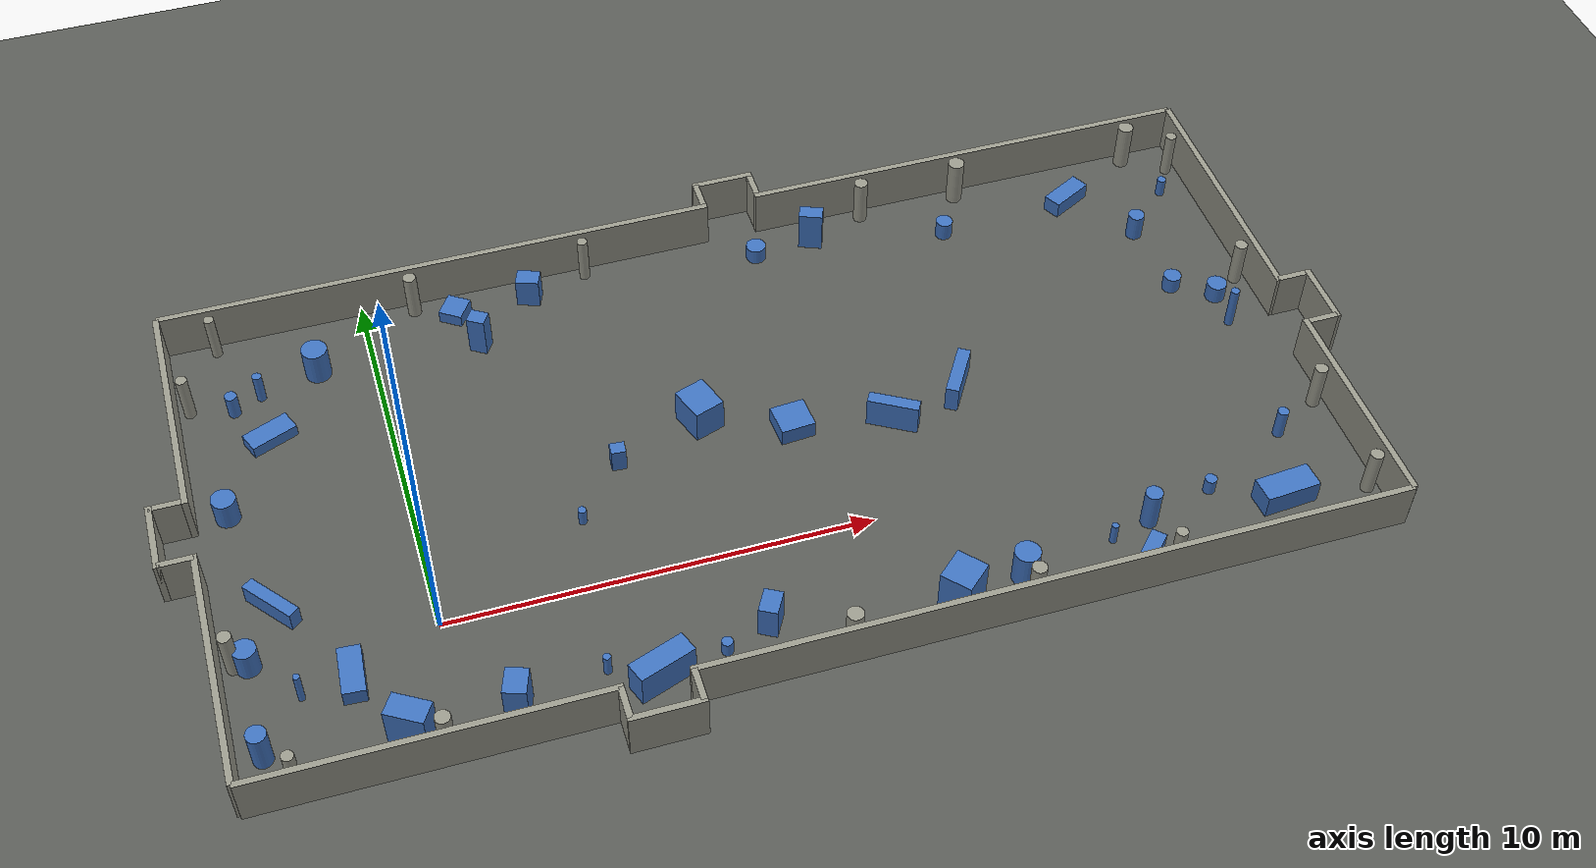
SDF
<sdf version="1.9">
 <world name="default">
  <model name="track_feature">
   <static>true</static>
   <link name="feature_link">
    <collision name="feat_box_1_collision">
     <pose>19.182450 -2.126785 0.297597 0.000000 0.000000 0.071566</pose>
     <geometry><box><size>1.340578 0.635319 0.595194</size></box></geometry>
    </collision>
    <visual name="feat_box_1_visual">
     <pose>19.182450 -2.126785 0.297597 0.000000 0.000000 0.071566</pose>
     <geometry><box><size>1.340578 0.635319 0.595194</size></box></geometry>
     <material><ambient>0.25 0.45 0.75 1</ambient><diffuse>0.25 0.45 0.75 1</diffuse></material>
    </visual>
    <collision name="feat_box_3_collision">
     <pose>1.179798 -2.589874 0.512454 0.000000 0.000000 1.240056</pose>
     <geometry><box><size>0.647610 0.528236 1.024907</size></box></geometry>
    </collision>
    <visual name="feat_box_3_visual">
     <pose>1.179798 -2.589874 0.512454 0.000000 0.000000 1.240056</pose>
     <geometry><box><size>0.647610 0.528236 1.024907</size></box></geometry>
     <material><ambient>0.25 0.45 0.75 1</ambient><diffuse>0.25 0.45 0.75 1</diffuse></material>
    </visual>
    <collision name="feat_box_4_collision">
     <pose>4.272953 -2.790723 0.426416 0.000000 0.000000 -2.798103</pose>
     <geometry><box><size>1.395901 0.521801 0.852832</size></box></geometry>
    </collision>
    <visual name="feat_box_4_visual">
     <pose>4.272953 -2.790723 0.426416 0.000000 0.000000 -2.798103</pose>
     <geometry><box><size>1.395901 0.521801 0.852832</size></box></geometry>
     <material><ambient>0.25 0.45 0.75 1</ambient><diffuse>0.25 0.45 0.75 1</diffuse></material>
    </visual>
    <collision name="feat_box_6_collision">
     <pose>-2.058646 -0.858897 0.200881 0.000000 0.000000 1.503232</pose>
     <geometry><box><size>1.214994 0.526412 0.401762</size></box></geometry>
    </collision>
    <visual name="feat_box_6_visual">
     <pose>-2.058646 -0.858897 0.200881 0.000000 0.000000 1.503232</pose>
     <geometry><box><size>1.214994 0.526412 0.401762</size></box></geometry>
     <material><ambient>0.25 0.45 0.75 1</ambient><diffuse>0.25 0.45 0.75 1</diffuse></material>
    </visual>
    <collision name="feat_box_7_collision">
     <pose>-3.421487 1.456710 0.247726 0.000000 0.000000 -0.897115</pose>
     <geometry><box><size>1.398623 0.300811 0.495452</size></box></geometry>
    </collision>
    <visual name="feat_box_7_visual">
     <pose>-3.421487 1.456710 0.247726 0.000000 0.000000 -0.897115</pose>
     <geometry><box><size>1.398623 0.300811 0.495452</size></box></geometry>
     <material><ambient>0.25 0.45 0.75 1</ambient><diffuse>0.25 0.45 0.75 1</diffuse></material>
    </visual>
    <collision name="feat_box_11_collision">
     <pose>2.204413 9.144332 0.161480 0.000000 0.000000 -2.168245</pose>
     <geometry><box><size>0.623662 0.584379 0.322960</size></box></geometry>
    </collision>
    <visual name="feat_box_11_visual">
     <pose>2.204413 9.144332 0.161480 0.000000 0.000000 -2.168245</pose>
     <geometry><box><size>0.623662 0.584379 0.322960</size></box></geometry>
     <material><ambient>0.25 0.45 0.75 1</ambient><diffuse>0.25 0.45 0.75 1</diffuse></material>
    </visual>
    <collision name="feat_box_12_collision">
     <pose>7.021286 4.015834 0.432218 0.000000 0.000000 1.904761</pose>
     <geometry><box><size>0.888329 0.770223 0.864436</size></box></geometry>
    </collision>
    <visual name="feat_box_12_visual">
     <pose>7.021286 4.015834 0.432218 0.000000 0.000000 1.904761</pose>
     <geometry><box><size>0.888329 0.770223 0.864436</size></box></geometry>
     <material><ambient>0.25 0.45 0.75 1</ambient><diffuse>0.25 0.45 0.75 1</diffuse></material>
    </visual>
    <collision name="feat_box_13_collision">
     <pose>11.362292 2.640668 0.396774 0.000000 0.000000 -0.541924</pose>
     <geometry><box><size>1.229833 0.296454 0.793548</size></box></geometry>
    </collision>
    <visual name="feat_box_13_visual">
     <pose>11.362292 2.640668 0.396774 0.000000 0.000000 -0.541924</pose>
     <geometry><box><size>1.229833 0.296454 0.793548</size></box></geometry>
     <material><ambient>0.25 0.45 0.75 1</ambient><diffuse>0.25 0.45 0.75 1</diffuse></material>
    </visual>
    <collision name="feat_box_14_collision">
     <pose>9.056478 3.192676 0.218494 0.000000 0.000000 -3.069531</pose>
     <geometry><box><size>0.838818 0.803474 0.436987</size></box></geometry>
    </collision>
    <visual name="feat_box_14_visual">
     <pose>9.056478 3.192676 0.218494 0.000000 0.000000 -3.069531</pose>
     <geometry><box><size>0.838818 0.803474 0.436987</size></box></geometry>
     <material><ambient>0.25 0.45 0.75 1</ambient><diffuse>0.25 0.45 0.75 1</diffuse></material>
    </visual>
    <collision name="feat_box_15_collision">
     <pose>4.855419 3.295663 0.304384 0.000000 0.000000 1.503453</pose>
     <geometry><box><size>0.311513 0.353624 0.608768</size></box></geometry>
    </collision>
    <visual name="feat_box_15_visual">
     <pose>4.855419 3.295663 0.304384 0.000000 0.000000 1.503453</pose>
     <geometry><box><size>0.311513 0.353624 0.608768</size></box></geometry>
     <material><ambient>0.25 0.45 0.75 1</ambient><diffuse>0.25 0.45 0.75 1</diffuse></material>
    </visual>
    <collision name="feat_box_16_collision">
     <pose>11.123830 -2.637869 0.515999 0.000000 0.000000 -0.847568</pose>
     <geometry><box><size>0.769834 0.812395 1.031998</size></box></geometry>
    </collision>
    <visual name="feat_box_16_visual">
     <pose>11.123830 -2.637869 0.515999 0.000000 0.000000 -0.847568</pose>
     <geometry><box><size>0.769834 0.812395 1.031998</size></box></geometry>
     <material><ambient>0.25 0.45 0.75 1</ambient><diffuse>0.25 0.45 0.75 1</diffuse></material>
    </visual>
    <collision name="feat_box_17_collision">
     <pose>18.148507 8.521141 0.211431 0.000000 0.000000 0.472483</pose>
     <geometry><box><size>1.107984 0.455740 0.422862</size></box></geometry>
    </collision>
    <visual name="feat_box_17_visual">
     <pose>18.148507 8.521141 0.211431 0.000000 0.000000 0.472483</pose>
     <geometry><box><size>1.107984 0.455740 0.422862</size></box></geometry>
     <material><ambient>0.25 0.45 0.75 1</ambient><diffuse>0.25 0.45 0.75 1</diffuse></material>
    </visual>
    <collision name="feat_box_19_collision">
     <pose>13.191602 3.226774 0.344864 0.000000 0.000000 -2.138076</pose>
     <geometry><box><size>1.362772 0.316263 0.689729</size></box></geometry>
    </collision>
    <visual name="feat_box_19_visual">
     <pose>13.191602 3.226774 0.344864 0.000000 0.000000 -2.138076</pose>
     <geometry><box><size>1.362772 0.316263 0.689729</size></box></geometry>
     <material><ambient>0.25 0.45 0.75 1</ambient><diffuse>0.25 0.45 0.75 1</diffuse></material>
    </visual>
    <collision name="feat_box_20_collision">
     <pose>-1.098010 -2.598565 0.510011 0.000000 0.000000 2.586275</pose>
     <geometry><box><size>0.920644 0.563178 1.020022</size></box></geometry>
    </collision>
    <visual name="feat_box_20_visual">
     <pose>-1.098010 -2.598565 0.510011 0.000000 0.000000 2.586275</pose>
     <geometry><box><size>0.920644 0.563178 1.020022</size></box></geometry>
     <material><ambient>0.25 0.45 0.75 1</ambient><diffuse>0.25 0.45 0.75 1</diffuse></material>
    </visual>
    <collision name="feat_box_24_collision">
     <pose>15.584878 -2.777719 0.176906 0.000000 0.000000 -2.338918</pose>
     <geometry><box><size>0.938350 0.358368 0.353812</size></box></geometry>
    </collision>
    <visual name="feat_box_24_visual">
     <pose>15.584878 -2.777719 0.176906 0.000000 0.000000 -2.338918</pose>
     <geometry><box><size>0.938350 0.358368 0.353812</size></box></geometry>
     <material><ambient>0.25 0.45 0.75 1</ambient><diffuse>0.25 0.45 0.75 1</diffuse></material>
    </visual>
    <collision name="feat_box_30_collision">
     <pose>4.083940 9.158206 0.387457 0.000000 0.000000 1.211615</pose>
     <geometry><box><size>0.432731 0.571052 0.774914</size></box></geometry>
    </collision>
    <visual name="feat_box_30_visual">
     <pose>4.083940 9.158206 0.387457 0.000000 0.000000 1.211615</pose>
     <geometry><box><size>0.432731 0.571052 0.774914</size></box></geometry>
     <material><ambient>0.25 0.45 0.75 1</ambient><diffuse>0.25 0.45 0.75 1</diffuse></material>
    </visual>
    <collision name="feat_box_33_collision">
     <pose>11.377380 9.036022 0.531876 0.000000 0.000000 1.171673</pose>
     <geometry><box><size>0.367295 0.586106 1.063752</size></box></geometry>
    </collision>
    <visual name="feat_box_33_visual">
     <pose>11.377380 9.036022 0.531876 0.000000 0.000000 1.171673</pose>
     <geometry><box><size>0.367295 0.586106 1.063752</size></box></geometry>
     <material><ambient>0.25 0.45 0.75 1</ambient><diffuse>0.25 0.45 0.75 1</diffuse></material>
    </visual>
    <collision name="feat_box_34_collision">
     <pose>2.588863 7.916875 0.524287 0.000000 0.000000 -2.139904</pose>
     <geometry><box><size>0.373135 0.444271 1.048573</size></box></geometry>
    </collision>
    <visual name="feat_box_34_visual">
     <pose>2.588863 7.916875 0.524287 0.000000 0.000000 -2.139904</pose>
     <geometry><box><size>0.373135 0.444271 1.048573</size></box></geometry>
     <material><ambient>0.25 0.45 0.75 1</ambient><diffuse>0.25 0.45 0.75 1</diffuse></material>
    </visual>
    <collision name="feat_box_37_collision">
     <pose>-2.750673 6.425730 0.152779 0.000000 0.000000 0.386606</pose>
     <geometry><box><size>1.158292 0.524840 0.305558</size></box></geometry>
    </collision>
    <visual name="feat_box_37_visual">
     <pose>-2.750673 6.425730 0.152779 0.000000 0.000000 0.386606</pose>
     <geometry><box><size>1.158292 0.524840 0.305558</size></box></geometry>
     <material><ambient>0.25 0.45 0.75 1</ambient><diffuse>0.25 0.45 0.75 1</diffuse></material>
    </visual>
    <collision name="feat_box_38_collision">
     <pose>6.898862 -2.083836 0.432732 0.000000 0.000000 -2.090582</pose>
     <geometry><box><size>0.602640 0.441976 0.865463</size></box></geometry>
    </collision>
    <visual name="feat_box_38_visual">
     <pose>6.898862 -2.083836 0.432732 0.000000 0.000000 -2.090582</pose>
     <geometry><box><size>0.602640 0.441976 0.865463</size></box></geometry>
     <material><ambient>0.25 0.45 0.75 1</ambient><diffuse>0.25 0.45 0.75 1</diffuse></material>
    </visual>
    <collision name="feat_cyl_2_collision">
     <pose>17.641157 -1.403380 0.210325 0.000000 0.000000 0.000000</pose>
     <geometry><cylinder><radius>0.139286</radius><length>0.420649</length></cylinder></geometry>
    </collision>
    <visual name="feat_cyl_2_visual">
     <pose>17.641157 -1.403380 0.210325 0.000000 0.000000 0.000000</pose>
     <geometry><cylinder><radius>0.139286</radius><length>0.420649</length></cylinder></geometry>
     <material><ambient>0.25 0.45 0.75 1</ambient><diffuse>0.25 0.45 0.75 1</diffuse></material>
    </visual>
    <collision name="feat_cyl_5_collision">
     <pose>-3.455867 7.489037 0.309885 0.000000 0.000000 0.000000</pose>
     <geometry><cylinder><radius>0.147177</radius><length>0.619770</length></cylinder></geometry>
    </collision>
    <visual name="feat_cyl_5_visual">
     <pose>-3.455867 7.489037 0.309885 0.000000 0.000000 0.000000</pose>
     <geometry><cylinder><radius>0.147177</radius><length>0.619770</length></cylinder></geometry>
     <material><ambient>0.25 0.45 0.75 1</ambient><diffuse>0.25 0.45 0.75 1</diffuse></material>
    </visual>
    <collision name="feat_cyl_8_collision">
     <pose>-2.776424 7.792773 0.386764 0.000000 0.000000 0.000000</pose>
     <geometry><cylinder><radius>0.109937</radius><length>0.773528</length></cylinder></geometry>
    </collision>
    <visual name="feat_cyl_8_visual">
     <pose>-2.776424 7.792773 0.386764 0.000000 0.000000 0.000000</pose>
     <geometry><cylinder><radius>0.109937</radius><length>0.773528</length></cylinder></geometry>
     <material><ambient>0.25 0.45 0.75 1</ambient><diffuse>0.25 0.45 0.75 1</diffuse></material>
    </visual>
    <collision name="feat_cyl_9_collision">
     <pose>3.662528 1.901326 0.211620 0.000000 0.000000 0.000000</pose>
     <geometry><cylinder><radius>0.098915</radius><length>0.423239</length></cylinder></geometry>
    </collision>
    <visual name="feat_cyl_9_visual">
     <pose>3.662528 1.901326 0.211620 0.000000 0.000000 0.000000</pose>
     <geometry><cylinder><radius>0.098915</radius><length>0.423239</length></cylinder></geometry>
     <material><ambient>0.25 0.45 0.75 1</ambient><diffuse>0.25 0.45 0.75 1</diffuse></material>
    </visual>
    <collision name="feat_cyl_10_collision">
     <pose>9.898130 8.946071 0.203369 0.000000 0.000000 0.000000</pose>
     <geometry><cylinder><radius>0.245061</radius><length>0.406738</length></cylinder></geometry>
    </collision>
    <visual name="feat_cyl_10_visual">
     <pose>9.898130 8.946071 0.203369 0.000000 0.000000 0.000000</pose>
     <geometry><cylinder><radius>0.245061</radius><length>0.406738</length></cylinder></geometry>
     <material><ambient>0.25 0.45 0.75 1</ambient><diffuse>0.25 0.45 0.75 1</diffuse></material>
    </visual>
    <collision name="feat_cyl_18_collision">
     <pose>-1.346008 8.190895 0.427441 0.000000 0.000000 0.000000</pose>
     <geometry><cylinder><radius>0.311903</radius><length>0.854882</length></cylinder></geometry>
    </collision>
    <visual name="feat_cyl_18_visual">
     <pose>-1.346008 8.190895 0.427441 0.000000 0.000000 0.000000</pose>
     <geometry><cylinder><radius>0.311903</radius><length>0.854882</length></cylinder></geometry>
     <material><ambient>0.25 0.45 0.75 1</ambient><diffuse>0.25 0.45 0.75 1</diffuse></material>
    </visual>
    <collision name="feat_cyl_21_collision">
     <pose>19.387182 6.916189 0.343859 0.000000 0.000000 0.000000</pose>
     <geometry><cylinder><radius>0.200949</radius><length>0.687718</length></cylinder></geometry>
    </collision>
    <visual name="feat_cyl_21_visual">
     <pose>19.387182 6.916189 0.343859 0.000000 0.000000 0.000000</pose>
     <geometry><cylinder><radius>0.200949</radius><length>0.687718</length></cylinder></geometry>
     <material><ambient>0.25 0.45 0.75 1</ambient><diffuse>0.25 0.45 0.75 1</diffuse></material>
    </visual>
    <collision name="feat_cyl_22_collision">
     <pose>5.797679 -2.484412 0.187469 0.000000 0.000000 0.000000</pose>
     <geometry><cylinder><radius>0.131505</radius><length>0.374938</length></cylinder></geometry>
    </collision>
    <visual name="feat_cyl_22_visual">
     <pose>5.797679 -2.484412 0.187469 0.000000 0.000000 0.000000</pose>
     <geometry><cylinder><radius>0.131505</radius><length>0.374938</length></cylinder></geometry>
     <material><ambient>0.25 0.45 0.75 1</ambient><diffuse>0.25 0.45 0.75 1</diffuse></material>
    </visual>
    <collision name="feat_cyl_23_collision">
     <pose>-4.031051 4.346045 0.351745 0.000000 0.000000 0.000000</pose>
     <geometry><cylinder><radius>0.286455</radius><length>0.703490</length></cylinder></geometry>
    </collision>
    <visual name="feat_cyl_23_visual">
     <pose>-4.031051 4.346045 0.351745 0.000000 0.000000 0.000000</pose>
     <geometry><cylinder><radius>0.286455</radius><length>0.703490</length></cylinder></geometry>
     <material><ambient>0.25 0.45 0.75 1</ambient><diffuse>0.25 0.45 0.75 1</diffuse></material>
    </visual>
    <collision name="feat_cyl_25_collision">
     <pose>14.948810 -2.124517 0.280676 0.000000 0.000000 0.000000</pose>
     <geometry><cylinder><radius>0.082182</radius><length>0.561351</length></cylinder></geometry>
    </collision>
    <visual name="feat_cyl_25_visual">
     <pose>14.948810 -2.124517 0.280676 0.000000 0.000000 0.000000</pose>
     <geometry><cylinder><radius>0.082182</radius><length>0.561351</length></cylinder></geometry>
     <material><ambient>0.25 0.45 0.75 1</ambient><diffuse>0.25 0.45 0.75 1</diffuse></material>
    </visual>
    <collision name="feat_cyl_26_collision">
     <pose>15.942461 -1.850000 0.518756 0.000000 0.000000 0.000000</pose>
     <geometry><cylinder><radius>0.199060</radius><length>1.037512</length></cylinder></geometry>
    </collision>
    <visual name="feat_cyl_26_visual">
     <pose>15.942461 -1.850000 0.518756 0.000000 0.000000 0.000000</pose>
     <geometry><cylinder><radius>0.199060</radius><length>1.037512</length></cylinder></geometry>
     <material><ambient>0.25 0.45 0.75 1</ambient><diffuse>0.25 0.45 0.75 1</diffuse></material>
    </visual>
    <collision name="feat_cyl_27_collision">
     <pose>20.653837 8.136227 0.245159 0.000000 0.000000 0.000000</pose>
     <geometry><cylinder><radius>0.109766</radius><length>0.490318</length></cylinder></geometry>
    </collision>
    <visual name="feat_cyl_27_visual">
     <pose>20.653837 8.136227 0.245159 0.000000 0.000000 0.000000</pose>
     <geometry><cylinder><radius>0.109766</radius><length>0.490318</length></cylinder></geometry>
     <material><ambient>0.25 0.45 0.75 1</ambient><diffuse>0.25 0.45 0.75 1</diffuse></material>
    </visual>
    <collision name="feat_cyl_28_collision">
     <pose>-4.184786 -2.291754 0.484384 0.000000 0.000000 0.000000</pose>
     <geometry><cylinder><radius>0.228435</radius><length>0.968769</length></cylinder></geometry>
    </collision>
    <visual name="feat_cyl_28_visual">
     <pose>-4.184786 -2.291754 0.484384 0.000000 0.000000 0.000000</pose>
     <geometry><cylinder><radius>0.228435</radius><length>0.968769</length></cylinder></geometry>
     <material><ambient>0.25 0.45 0.75 1</ambient><diffuse>0.25 0.45 0.75 1</diffuse></material>
    </visual>
    <collision name="feat_cyl_29_collision">
     <pose>19.928766 -0.296797 0.395518 0.000000 0.000000 0.000000</pose>
     <geometry><cylinder><radius>0.130650</radius><length>0.791036</length></cylinder></geometry>
    </collision>
    <visual name="feat_cyl_29_visual">
     <pose>19.928766 -0.296797 0.395518 0.000000 0.000000 0.000000</pose>
     <geometry><cylinder><radius>0.130650</radius><length>0.791036</length></cylinder></geometry>
     <material><ambient>0.25 0.45 0.75 1</ambient><diffuse>0.25 0.45 0.75 1</diffuse></material>
    </visual>
    <collision name="feat_cyl_31_collision">
     <pose>12.669202 -2.486080 0.459795 0.000000 0.000000 0.000000</pose>
     <geometry><cylinder><radius>0.300406</radius><length>0.919590</length></cylinder></geometry>
    </collision>
    <visual name="feat_cyl_31_visual">
     <pose>12.669202 -2.486080 0.459795 0.000000 0.000000 0.000000</pose>
     <geometry><cylinder><radius>0.300406</radius><length>0.919590</length></cylinder></geometry>
     <material><ambient>0.25 0.45 0.75 1</ambient><diffuse>0.25 0.45 0.75 1</diffuse></material>
    </visual>
    <collision name="feat_cyl_32_collision">
     <pose>20.372514 3.342695 0.555605 0.000000 0.000000 0.000000</pose>
     <geometry><cylinder><radius>0.105068</radius><length>1.111210</length></cylinder></geometry>
    </collision>
    <visual name="feat_cyl_32_visual">
     <pose>20.372514 3.342695 0.555605 0.000000 0.000000 0.000000</pose>
     <geometry><cylinder><radius>0.105068</radius><length>1.111210</length></cylinder></geometry>
     <material><ambient>0.25 0.45 0.75 1</ambient><diffuse>0.25 0.45 0.75 1</diffuse></material>
    </visual>
    <collision name="feat_cyl_35_collision">
     <pose>14.729085 8.337101 0.236460 0.000000 0.000000 0.000000</pose>
     <geometry><cylinder><radius>0.208194</radius><length>0.472920</length></cylinder></geometry>
    </collision>
    <visual name="feat_cyl_35_visual">
     <pose>14.729085 8.337101 0.236460 0.000000 0.000000 0.000000</pose>
     <geometry><cylinder><radius>0.208194</radius><length>0.472920</length></cylinder></geometry>
     <material><ambient>0.25 0.45 0.75 1</ambient><diffuse>0.25 0.45 0.75 1</diffuse></material>
    </visual>
    <collision name="feat_cyl_36_collision">
     <pose>19.509097 4.890611 0.209609 0.000000 0.000000 0.000000</pose>
     <geometry><cylinder><radius>0.216842</radius><length>0.419218</length></cylinder></geometry>
    </collision>
    <visual name="feat_cyl_36_visual">
     <pose>19.509097 4.890611 0.209609 0.000000 0.000000 0.000000</pose>
     <geometry><cylinder><radius>0.216842</radius><length>0.419218</length></cylinder></geometry>
     <material><ambient>0.25 0.45 0.75 1</ambient><diffuse>0.25 0.45 0.75 1</diffuse></material>
    </visual>
    <collision name="feat_cyl_39_collision">
     <pose>20.428457 4.282153 0.231497 0.000000 0.000000 0.000000</pose>
     <geometry><cylinder><radius>0.244354</radius><length>0.462994</length></cylinder></geometry>
    </collision>
    <visual name="feat_cyl_39_visual">
     <pose>20.428457 4.282153 0.231497 0.000000 0.000000 0.000000</pose>
     <geometry><cylinder><radius>0.244354</radius><length>0.462994</length></cylinder></geometry>
     <material><ambient>0.25 0.45 0.75 1</ambient><diffuse>0.25 0.45 0.75 1</diffuse></material>
    </visual>
    <collision name="feat_cyl_40_collision">
     <pose>3.201039 -2.230888 0.272496 0.000000 0.000000 0.000000</pose>
     <geometry><cylinder><radius>0.090421</radius><length>0.544992</length></cylinder></geometry>
    </collision>
    <visual name="feat_cyl_40_visual">
     <pose>3.201039 -2.230888 0.272496 0.000000 0.000000 0.000000</pose>
     <geometry><cylinder><radius>0.090421</radius><length>0.544992</length></cylinder></geometry>
     <material><ambient>0.25 0.45 0.75 1</ambient><diffuse>0.25 0.45 0.75 1</diffuse></material>
    </visual>
    <collision name="feat_cyl_41_collision">
     <pose>-4.150407 0.090460 0.357112 0.000000 0.000000 0.000000</pose>
     <geometry><cylinder><radius>0.271227</radius><length>0.714224</length></cylinder></geometry>
    </collision>
    <visual name="feat_cyl_41_visual">
     <pose>-4.150407 0.090460 0.357112 0.000000 0.000000 0.000000</pose>
     <geometry><cylinder><radius>0.271227</radius><length>0.714224</length></cylinder></geometry>
     <material><ambient>0.25 0.45 0.75 1</ambient><diffuse>0.25 0.45 0.75 1</diffuse></material>
    </visual>
    <collision name="feat_cyl_42_collision">
     <pose>-3.185728 -1.013729 0.406964 0.000000 0.000000 0.000000</pose>
     <geometry><cylinder><radius>0.075985</radius><length>0.813928</length></cylinder></geometry>
    </collision>
    <visual name="feat_cyl_42_visual">
     <pose>-3.185728 -1.013729 0.406964 0.000000 0.000000 0.000000</pose>
     <geometry><cylinder><radius>0.075985</radius><length>0.813928</length></cylinder></geometry>
     <material><ambient>0.25 0.45 0.75 1</ambient><diffuse>0.25 0.45 0.75 1</diffuse></material>
    </visual>
   </link>
  </model>
  <model name="track_ground">
   <static>true</static>
   <link name="ground_link">
    <collision name="ground_collision">
     <pose>8.482745 3.025985 -0.025000 0.000000 0.000000 0.000000</pose>
     <geometry><box><size>80.000000 80.000000 0.050000</size></box></geometry>
     <surface>
      <friction><ode><mu>1.2</mu><mu2>1.2</mu2></ode></friction>
      <contact><ode><kp>100000.0</kp><kd>10.0</kd></ode></contact>
     </surface>
    </collision>
    <visual name="ground_visual">
     <pose>8.482745 3.025985 -0.025000 0.000000 0.000000 0.000000</pose>
     <geometry><box><size>80.000000 80.000000 0.050000</size></box></geometry>
     <material><ambient>0.35 0.36 0.34 1</ambient><diffuse>0.35 0.36 0.34 1</diffuse></material>
    </visual>
   </link>
  </model>
  <model name="track_room">
   <static>true</static>
   <link name="room_link">
    <collision name="hall_0_0_collision">
     <pose>-0.765857 -3.500000 0.600000 0.000000 0.000000 0.000000</pose>
     <geometry><box><size>8.104186 0.150000 1.200000</size></box></geometry>
    </collision>
    <visual name="hall_0_0_visual">
     <pose>-0.765857 -3.500000 0.600000 0.000000 0.000000 0.000000</pose>
     <geometry><box><size>8.104186 0.150000 1.200000</size></box></geometry>
     <material><ambient>0.6 0.6 0.55 1</ambient><diffuse>0.6 0.6 0.55 1</diffuse></material>
    </visual>
    <collision name="hall_0_95_collision">
     <pose>13.105182 -3.500000 0.600000 0.000000 0.000000 0.000000</pose>
     <geometry><box><size>16.789636 0.150000 1.200000</size></box></geometry>
    </collision>
    <visual name="hall_0_95_visual">
     <pose>13.105182 -3.500000 0.600000 0.000000 0.000000 0.000000</pose>
     <geometry><box><size>16.789636 0.150000 1.200000</size></box></geometry>
     <material><ambient>0.6 0.6 0.55 1</ambient><diffuse>0.6 0.6 0.55 1</diffuse></material>
    </visual>
    <collision name="hall_niche_0_collision">
     <pose>3.998300 -4.300000 0.600000 0.000000 0.000000 0.000000</pose>
     <geometry><box><size>1.724128 0.150000 1.200000</size></box></geometry>
    </collision>
    <visual name="hall_niche_0_visual">
     <pose>3.998300 -4.300000 0.600000 0.000000 0.000000 0.000000</pose>
     <geometry><box><size>1.724128 0.150000 1.200000</size></box></geometry>
     <material><ambient>0.6 0.6 0.55 1</ambient><diffuse>0.6 0.6 0.55 1</diffuse></material>
    </visual>
    <collision name="hall_jamb_0_-1_collision">
     <pose>3.211236 -3.900000 0.600000 0.000000 0.000000 0.000000</pose>
     <geometry><box><size>0.150000 0.800000 1.200000</size></box></geometry>
    </collision>
    <visual name="hall_jamb_0_-1_visual">
     <pose>3.211236 -3.900000 0.600000 0.000000 0.000000 0.000000</pose>
     <geometry><box><size>0.150000 0.800000 1.200000</size></box></geometry>
     <material><ambient>0.6 0.6 0.55 1</ambient><diffuse>0.6 0.6 0.55 1</diffuse></material>
    </visual>
    <collision name="hall_jamb_0_1_collision">
     <pose>4.785364 -3.900000 0.600000 0.000000 0.000000 0.000000</pose>
     <geometry><box><size>0.150000 0.800000 1.200000</size></box></geometry>
    </collision>
    <visual name="hall_jamb_0_1_visual">
     <pose>4.785364 -3.900000 0.600000 0.000000 0.000000 0.000000</pose>
     <geometry><box><size>0.150000 0.800000 1.200000</size></box></geometry>
     <material><ambient>0.6 0.6 0.55 1</ambient><diffuse>0.6 0.6 0.55 1</diffuse></material>
    </visual>
    <collision name="hall_1_0_collision">
     <pose>21.500000 -0.793002 0.600000 0.000000 0.000000 1.570796</pose>
     <geometry><box><size>5.413996 0.150000 1.200000</size></box></geometry>
    </collision>
    <visual name="hall_1_0_visual">
     <pose>21.500000 -0.793002 0.600000 0.000000 0.000000 1.570796</pose>
     <geometry><box><size>5.413996 0.150000 1.200000</size></box></geometry>
     <material><ambient>0.6 0.6 0.55 1</ambient><diffuse>0.6 0.6 0.55 1</diffuse></material>
    </visual>
    <collision name="hall_1_67_collision">
     <pose>21.500000 6.584571 0.600000 0.000000 0.000000 1.570796</pose>
     <geometry><box><size>6.630858 0.150000 1.200000</size></box></geometry>
    </collision>
    <visual name="hall_1_67_visual">
     <pose>21.500000 6.584571 0.600000 0.000000 0.000000 1.570796</pose>
     <geometry><box><size>6.630858 0.150000 1.200000</size></box></geometry>
     <material><ambient>0.6 0.6 0.55 1</ambient><diffuse>0.6 0.6 0.55 1</diffuse></material>
    </visual>
    <collision name="hall_niche_1_collision">
     <pose>22.300000 2.591569 0.600000 0.000000 0.000000 1.570796</pose>
     <geometry><box><size>1.655145 0.150000 1.200000</size></box></geometry>
    </collision>
    <visual name="hall_niche_1_visual">
     <pose>22.300000 2.591569 0.600000 0.000000 0.000000 1.570796</pose>
     <geometry><box><size>1.655145 0.150000 1.200000</size></box></geometry>
     <material><ambient>0.6 0.6 0.55 1</ambient><diffuse>0.6 0.6 0.55 1</diffuse></material>
    </visual>
    <collision name="hall_jamb_1_-1_collision">
     <pose>21.900000 1.838996 0.600000 0.000000 0.000000 1.570796</pose>
     <geometry><box><size>0.150000 0.800000 1.200000</size></box></geometry>
    </collision>
    <visual name="hall_jamb_1_-1_visual">
     <pose>21.900000 1.838996 0.600000 0.000000 0.000000 1.570796</pose>
     <geometry><box><size>0.150000 0.800000 1.200000</size></box></geometry>
     <material><ambient>0.6 0.6 0.55 1</ambient><diffuse>0.6 0.6 0.55 1</diffuse></material>
    </visual>
    <collision name="hall_jamb_1_1_collision">
     <pose>21.900000 3.344142 0.600000 0.000000 0.000000 1.570796</pose>
     <geometry><box><size>0.150000 0.800000 1.200000</size></box></geometry>
    </collision>
    <visual name="hall_jamb_1_1_visual">
     <pose>21.900000 3.344142 0.600000 0.000000 0.000000 1.570796</pose>
     <geometry><box><size>0.150000 0.800000 1.200000</size></box></geometry>
     <material><ambient>0.6 0.6 0.55 1</ambient><diffuse>0.6 0.6 0.55 1</diffuse></material>
    </visual>
    <collision name="hall_2_0_collision">
     <pose>15.826226 9.900000 0.600000 0.000000 0.000000 3.141593</pose>
     <geometry><box><size>11.347548 0.150000 1.200000</size></box></geometry>
    </collision>
    <visual name="hall_2_0_visual">
     <pose>15.826226 9.900000 0.600000 0.000000 0.000000 3.141593</pose>
     <geometry><box><size>11.347548 0.150000 1.200000</size></box></geometry>
     <material><ambient>0.6 0.6 0.55 1</ambient><diffuse>0.6 0.6 0.55 1</diffuse></material>
    </visual>
    <collision name="hall_2_126_collision">
     <pose>2.039084 9.900000 0.600000 0.000000 0.000000 3.141593</pose>
     <geometry><box><size>13.714069 0.150000 1.200000</size></box></geometry>
    </collision>
    <visual name="hall_2_126_visual">
     <pose>2.039084 9.900000 0.600000 0.000000 0.000000 3.141593</pose>
     <geometry><box><size>13.714069 0.150000 1.200000</size></box></geometry>
     <material><ambient>0.6 0.6 0.55 1</ambient><diffuse>0.6 0.6 0.55 1</diffuse></material>
    </visual>
    <collision name="hall_niche_2_collision">
     <pose>9.524285 10.700000 0.600000 0.000000 0.000000 3.141593</pose>
     <geometry><box><size>1.556333 0.150000 1.200000</size></box></geometry>
    </collision>
    <visual name="hall_niche_2_visual">
     <pose>9.524285 10.700000 0.600000 0.000000 0.000000 3.141593</pose>
     <geometry><box><size>1.556333 0.150000 1.200000</size></box></geometry>
     <material><ambient>0.6 0.6 0.55 1</ambient><diffuse>0.6 0.6 0.55 1</diffuse></material>
    </visual>
    <collision name="hall_jamb_2_-1_collision">
     <pose>10.227452 10.300000 0.600000 0.000000 0.000000 3.141593</pose>
     <geometry><box><size>0.150000 0.800000 1.200000</size></box></geometry>
    </collision>
    <visual name="hall_jamb_2_-1_visual">
     <pose>10.227452 10.300000 0.600000 0.000000 0.000000 3.141593</pose>
     <geometry><box><size>0.150000 0.800000 1.200000</size></box></geometry>
     <material><ambient>0.6 0.6 0.55 1</ambient><diffuse>0.6 0.6 0.55 1</diffuse></material>
    </visual>
    <collision name="hall_jamb_2_1_collision">
     <pose>8.821119 10.300000 0.600000 0.000000 0.000000 3.141593</pose>
     <geometry><box><size>0.150000 0.800000 1.200000</size></box></geometry>
    </collision>
    <visual name="hall_jamb_2_1_visual">
     <pose>8.821119 10.300000 0.600000 0.000000 0.000000 3.141593</pose>
     <geometry><box><size>0.150000 0.800000 1.200000</size></box></geometry>
     <material><ambient>0.6 0.6 0.55 1</ambient><diffuse>0.6 0.6 0.55 1</diffuse></material>
    </visual>
    <collision name="hall_3_0_collision">
     <pose>-4.817951 6.964994 0.600000 0.000000 0.000000 -1.570796</pose>
     <geometry><box><size>5.870012 0.150000 1.200000</size></box></geometry>
    </collision>
    <visual name="hall_3_0_visual">
     <pose>-4.817951 6.964994 0.600000 0.000000 0.000000 -1.570796</pose>
     <geometry><box><size>5.870012 0.150000 1.200000</size></box></geometry>
     <material><ambient>0.6 0.6 0.55 1</ambient><diffuse>0.6 0.6 0.55 1</diffuse></material>
    </visual>
    <collision name="hall_3_73_collision">
     <pose>-4.817951 -0.475885 0.600000 0.000000 0.000000 -1.570796</pose>
     <geometry><box><size>6.048230 0.150000 1.200000</size></box></geometry>
    </collision>
    <visual name="hall_3_73_visual">
     <pose>-4.817951 -0.475885 0.600000 0.000000 0.000000 -1.570796</pose>
     <geometry><box><size>6.048230 0.150000 1.200000</size></box></geometry>
     <material><ambient>0.6 0.6 0.55 1</ambient><diffuse>0.6 0.6 0.55 1</diffuse></material>
    </visual>
    <collision name="hall_niche_3_collision">
     <pose>-5.617951 3.289109 0.600000 0.000000 0.000000 -1.570796</pose>
     <geometry><box><size>1.781758 0.150000 1.200000</size></box></geometry>
    </collision>
    <visual name="hall_niche_3_visual">
     <pose>-5.617951 3.289109 0.600000 0.000000 0.000000 -1.570796</pose>
     <geometry><box><size>1.781758 0.150000 1.200000</size></box></geometry>
     <material><ambient>0.6 0.6 0.55 1</ambient><diffuse>0.6 0.6 0.55 1</diffuse></material>
    </visual>
    <collision name="hall_jamb_3_-1_collision">
     <pose>-5.217951 4.104988 0.600000 0.000000 0.000000 -1.570796</pose>
     <geometry><box><size>0.150000 0.800000 1.200000</size></box></geometry>
    </collision>
    <visual name="hall_jamb_3_-1_visual">
     <pose>-5.217951 4.104988 0.600000 0.000000 0.000000 -1.570796</pose>
     <geometry><box><size>0.150000 0.800000 1.200000</size></box></geometry>
     <material><ambient>0.6 0.6 0.55 1</ambient><diffuse>0.6 0.6 0.55 1</diffuse></material>
    </visual>
    <collision name="hall_jamb_3_1_collision">
     <pose>-5.217951 2.473230 0.600000 0.000000 0.000000 -1.570796</pose>
     <geometry><box><size>0.150000 0.800000 1.200000</size></box></geometry>
    </collision>
    <visual name="hall_jamb_3_1_visual">
     <pose>-5.217951 2.473230 0.600000 0.000000 0.000000 -1.570796</pose>
     <geometry><box><size>0.150000 0.800000 1.200000</size></box></geometry>
     <material><ambient>0.6 0.6 0.55 1</ambient><diffuse>0.6 0.6 0.55 1</diffuse></material>
    </visual>
    <collision name="column_0_11_collision">
     <pose>-3.625972 -3.150000 0.600000 0.000000 0.000000 0.000000</pose>
     <geometry><cylinder><radius>0.140701</radius><length>1.200000</length></cylinder></geometry>
    </collision>
    <visual name="column_0_11_visual">
     <pose>-3.625972 -3.150000 0.600000 0.000000 0.000000 0.000000</pose>
     <geometry><cylinder><radius>0.140701</radius><length>1.200000</length></cylinder></geometry>
     <material><ambient>0.6 0.6 0.55 1</ambient><diffuse>0.6 0.6 0.55 1</diffuse></material>
    </visual>
    <collision name="column_0_43_collision">
     <pose>-0.453721 -3.150000 0.600000 0.000000 0.000000 0.000000</pose>
     <geometry><cylinder><radius>0.178272</radius><length>1.200000</length></cylinder></geometry>
    </collision>
    <visual name="column_0_43_visual">
     <pose>-0.453721 -3.150000 0.600000 0.000000 0.000000 0.000000</pose>
     <geometry><cylinder><radius>0.178272</radius><length>1.200000</length></cylinder></geometry>
     <material><ambient>0.6 0.6 0.55 1</ambient><diffuse>0.6 0.6 0.55 1</diffuse></material>
    </visual>
    <collision name="column_0_132_collision">
     <pose>8.450523 -3.150000 0.600000 0.000000 0.000000 0.000000</pose>
     <geometry><cylinder><radius>0.194124</radius><length>1.200000</length></cylinder></geometry>
    </collision>
    <visual name="column_0_132_visual">
     <pose>8.450523 -3.150000 0.600000 0.000000 0.000000 0.000000</pose>
     <geometry><cylinder><radius>0.194124</radius><length>1.200000</length></cylinder></geometry>
     <material><ambient>0.6 0.6 0.55 1</ambient><diffuse>0.6 0.6 0.55 1</diffuse></material>
    </visual>
    <collision name="column_0_174_collision">
     <pose>12.654806 -3.150000 0.600000 0.000000 0.000000 0.000000</pose>
     <geometry><cylinder><radius>0.174335</radius><length>1.200000</length></cylinder></geometry>
    </collision>
    <visual name="column_0_174_visual">
     <pose>12.654806 -3.150000 0.600000 0.000000 0.000000 0.000000</pose>
     <geometry><cylinder><radius>0.174335</radius><length>1.200000</length></cylinder></geometry>
     <material><ambient>0.6 0.6 0.55 1</ambient><diffuse>0.6 0.6 0.55 1</diffuse></material>
    </visual>
    <collision name="column_0_208_collision">
     <pose>16.011365 -3.150000 0.600000 0.000000 0.000000 0.000000</pose>
     <geometry><cylinder><radius>0.137986</radius><length>1.200000</length></cylinder></geometry>
    </collision>
    <visual name="column_0_208_visual">
     <pose>16.011365 -3.150000 0.600000 0.000000 0.000000 0.000000</pose>
     <geometry><cylinder><radius>0.137986</radius><length>1.200000</length></cylinder></geometry>
     <material><ambient>0.6 0.6 0.55 1</ambient><diffuse>0.6 0.6 0.55 1</diffuse></material>
    </visual>
    <collision name="column_1_11_collision">
     <pose>21.150000 -2.397581 0.600000 0.000000 0.000000 0.000000</pose>
     <geometry><cylinder><radius>0.156088</radius><length>1.200000</length></cylinder></geometry>
    </collision>
    <visual name="column_1_11_visual">
     <pose>21.150000 -2.397581 0.600000 0.000000 0.000000 0.000000</pose>
     <geometry><cylinder><radius>0.156088</radius><length>1.200000</length></cylinder></geometry>
     <material><ambient>0.6 0.6 0.55 1</ambient><diffuse>0.6 0.6 0.55 1</diffuse></material>
    </visual>
    <collision name="column_1_38_collision">
     <pose>21.150000 0.353458 0.600000 0.000000 0.000000 0.000000</pose>
     <geometry><cylinder><radius>0.155453</radius><length>1.200000</length></cylinder></geometry>
    </collision>
    <visual name="column_1_38_visual">
     <pose>21.150000 0.353458 0.600000 0.000000 0.000000 0.000000</pose>
     <geometry><cylinder><radius>0.155453</radius><length>1.200000</length></cylinder></geometry>
     <material><ambient>0.6 0.6 0.55 1</ambient><diffuse>0.6 0.6 0.55 1</diffuse></material>
    </visual>
    <collision name="column_1_81_collision">
     <pose>21.150000 4.686549 0.600000 0.000000 0.000000 0.000000</pose>
     <geometry><cylinder><radius>0.154114</radius><length>1.200000</length></cylinder></geometry>
    </collision>
    <visual name="column_1_81_visual">
     <pose>21.150000 4.686549 0.600000 0.000000 0.000000 0.000000</pose>
     <geometry><cylinder><radius>0.154114</radius><length>1.200000</length></cylinder></geometry>
     <material><ambient>0.6 0.6 0.55 1</ambient><diffuse>0.6 0.6 0.55 1</diffuse></material>
    </visual>
    <collision name="column_1_123_collision">
     <pose>21.150000 8.892017 0.600000 0.000000 0.000000 0.000000</pose>
     <geometry><cylinder><radius>0.132317</radius><length>1.200000</length></cylinder></geometry>
    </collision>
    <visual name="column_1_123_visual">
     <pose>21.150000 8.892017 0.600000 0.000000 0.000000 0.000000</pose>
     <geometry><cylinder><radius>0.132317</radius><length>1.200000</length></cylinder></geometry>
     <material><ambient>0.6 0.6 0.55 1</ambient><diffuse>0.6 0.6 0.55 1</diffuse></material>
    </visual>
    <collision name="column_2_13_collision">
     <pose>20.157414 9.550000 0.600000 0.000000 0.000000 0.000000</pose>
     <geometry><cylinder><radius>0.189868</radius><length>1.200000</length></cylinder></geometry>
    </collision>
    <visual name="column_2_13_visual">
     <pose>20.157414 9.550000 0.600000 0.000000 0.000000 0.000000</pose>
     <geometry><cylinder><radius>0.189868</radius><length>1.200000</length></cylinder></geometry>
     <material><ambient>0.6 0.6 0.55 1</ambient><diffuse>0.6 0.6 0.55 1</diffuse></material>
    </visual>
    <collision name="column_2_60_collision">
     <pose>15.451641 9.550000 0.600000 0.000000 0.000000 0.000000</pose>
     <geometry><cylinder><radius>0.201263</radius><length>1.200000</length></cylinder></geometry>
    </collision>
    <visual name="column_2_60_visual">
     <pose>15.451641 9.550000 0.600000 0.000000 0.000000 0.000000</pose>
     <geometry><cylinder><radius>0.201263</radius><length>1.200000</length></cylinder></geometry>
     <material><ambient>0.6 0.6 0.55 1</ambient><diffuse>0.6 0.6 0.55 1</diffuse></material>
    </visual>
    <collision name="column_2_86_collision">
     <pose>12.874450 9.550000 0.600000 0.000000 0.000000 0.000000</pose>
     <geometry><cylinder><radius>0.168811</radius><length>1.200000</length></cylinder></geometry>
    </collision>
    <visual name="column_2_86_visual">
     <pose>12.874450 9.550000 0.600000 0.000000 0.000000 0.000000</pose>
     <geometry><cylinder><radius>0.168811</radius><length>1.200000</length></cylinder></geometry>
     <material><ambient>0.6 0.6 0.55 1</ambient><diffuse>0.6 0.6 0.55 1</diffuse></material>
    </visual>
    <collision name="column_2_159_collision">
     <pose>5.582327 9.550000 0.600000 0.000000 0.000000 0.000000</pose>
     <geometry><cylinder><radius>0.128329</radius><length>1.200000</length></cylinder></geometry>
    </collision>
    <visual name="column_2_159_visual">
     <pose>5.582327 9.550000 0.600000 0.000000 0.000000 0.000000</pose>
     <geometry><cylinder><radius>0.128329</radius><length>1.200000</length></cylinder></geometry>
     <material><ambient>0.6 0.6 0.55 1</ambient><diffuse>0.6 0.6 0.55 1</diffuse></material>
    </visual>
    <collision name="column_2_202_collision">
     <pose>1.258230 9.550000 0.600000 0.000000 0.000000 0.000000</pose>
     <geometry><cylinder><radius>0.161678</radius><length>1.200000</length></cylinder></geometry>
    </collision>
    <visual name="column_2_202_visual">
     <pose>1.258230 9.550000 0.600000 0.000000 0.000000 0.000000</pose>
     <geometry><cylinder><radius>0.161678</radius><length>1.200000</length></cylinder></geometry>
     <material><ambient>0.6 0.6 0.55 1</ambient><diffuse>0.6 0.6 0.55 1</diffuse></material>
    </visual>
    <collision name="column_2_251_collision">
     <pose>-3.601543 9.550000 0.600000 0.000000 0.000000 0.000000</pose>
     <geometry><cylinder><radius>0.121908</radius><length>1.200000</length></cylinder></geometry>
    </collision>
    <visual name="column_2_251_visual">
     <pose>-3.601543 9.550000 0.600000 0.000000 0.000000 0.000000</pose>
     <geometry><cylinder><radius>0.121908</radius><length>1.200000</length></cylinder></geometry>
     <material><ambient>0.6 0.6 0.55 1</ambient><diffuse>0.6 0.6 0.55 1</diffuse></material>
    </visual>
    <collision name="column_3_21_collision">
     <pose>-4.467951 7.765419 0.600000 0.000000 0.000000 0.000000</pose>
     <geometry><cylinder><radius>0.138202</radius><length>1.200000</length></cylinder></geometry>
    </collision>
    <visual name="column_3_21_visual">
     <pose>-4.467951 7.765419 0.600000 0.000000 0.000000 0.000000</pose>
     <geometry><cylinder><radius>0.138202</radius><length>1.200000</length></cylinder></geometry>
     <material><ambient>0.6 0.6 0.55 1</ambient><diffuse>0.6 0.6 0.55 1</diffuse></material>
    </visual>
    <collision name="column_3_97_collision">
     <pose>-4.467951 0.156650 0.600000 0.000000 0.000000 0.000000</pose>
     <geometry><cylinder><radius>0.161971</radius><length>1.200000</length></cylinder></geometry>
    </collision>
    <visual name="column_3_97_visual">
     <pose>-4.467951 0.156650 0.600000 0.000000 0.000000 0.000000</pose>
     <geometry><cylinder><radius>0.161971</radius><length>1.200000</length></cylinder></geometry>
     <material><ambient>0.6 0.6 0.55 1</ambient><diffuse>0.6 0.6 0.55 1</diffuse></material>
    </visual>
   </link>
  </model>
 </world>
</sdf>
